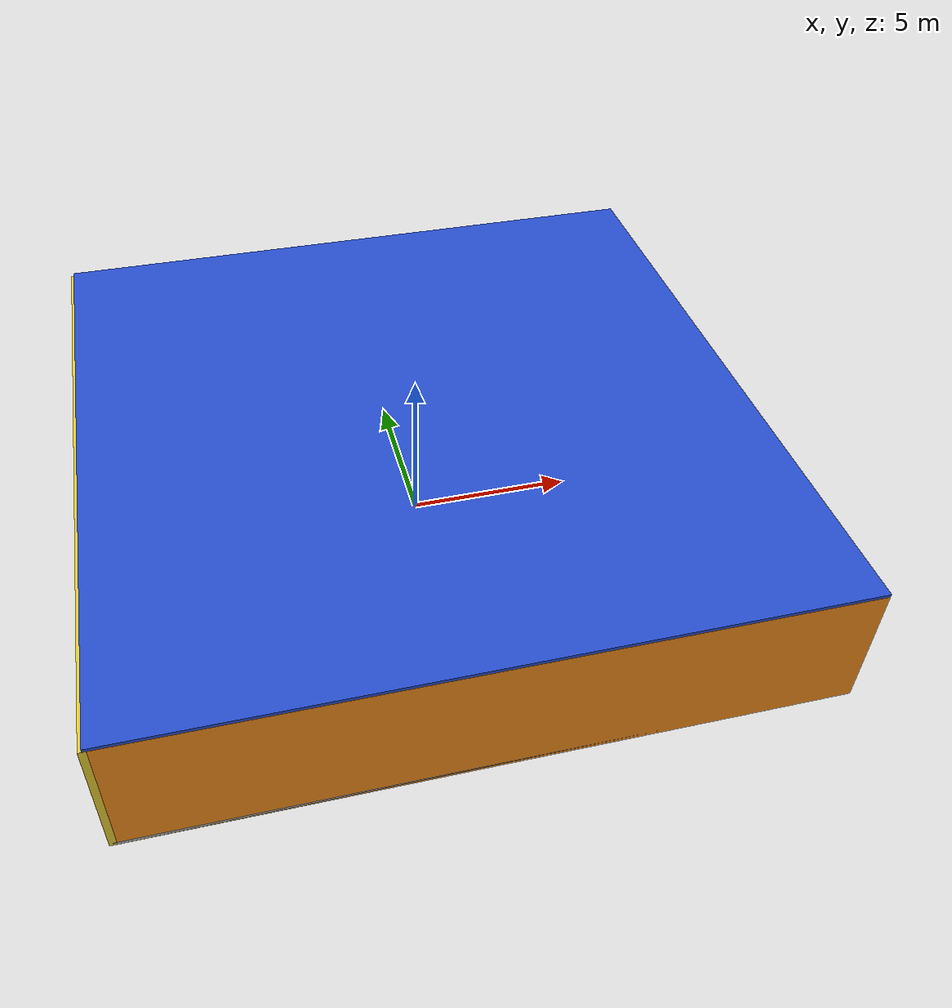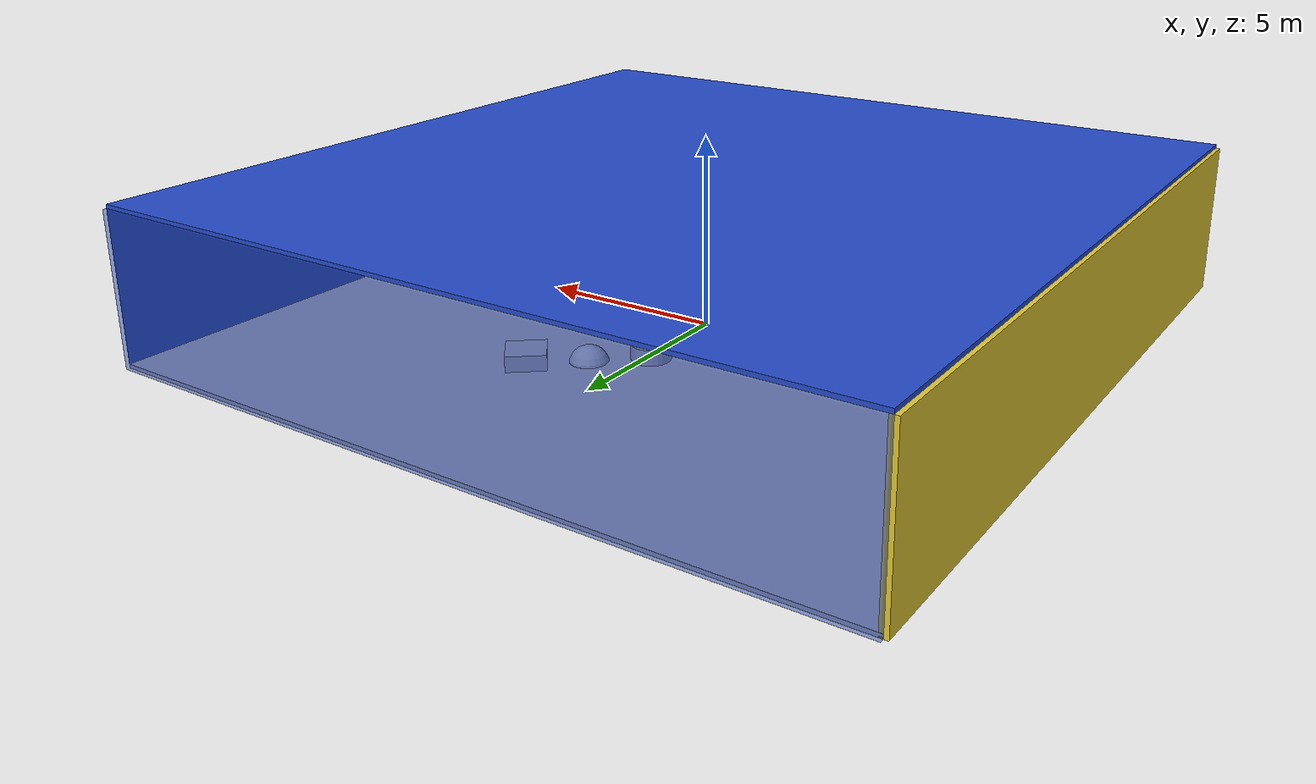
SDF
<sdf version="1.4">
 <world name="default">
  <physics type="ode">
   <max_step_size>0.001</max_step_size>
   <real_time_factor>1</real_time_factor>
   <real_time_update_rate>1000</real_time_update_rate>
   <gravity>0 0 -9.8</gravity>
  </physics>
  <scene><ambient>0.4 0.4 0.4 1</ambient><background>0.7 0.7 0.7 1</background><shadows>1</shadows></scene>
  <model name="Surrounding">
   <static>1</static>
   <link name="Ceiling">
    <collision name="Ceiling_Collision"><geometry><box><size>20 20 0.1</size></box></geometry></collision>
    <visual name="Ceiling_Visual">
     <geometry><box><size>20 20 0.1</size></box></geometry>
     <material>
      <script><uri>file://media/materials/scripts/gazebo.material</uri><name>Gazebo/Blue</name></script>
     </material>
    </visual>
    <pose>0 0 4.05 0 0 0</pose>
   </link>
   <link name="Wall_South">
    <collision name="Wall_South_Collision">
     <geometry><box><size>20 0 4</size></box></geometry>
     <pose>0 0 2 0 -0 0</pose>
    </collision>
    <visual name="Wall_South_Visual">
     <pose>0 0 2 0 -0 0</pose>
     <geometry><box><size>20 0 4</size></box></geometry>
     <material>
      <script><uri>file://media/materials/scripts/gazebo.material</uri><name>Gazebo/Orange</name></script>
     </material>
    </visual>
    <velocity_decay><linear>0</linear><angular>0</angular></velocity_decay>
    <pose>0 -10 0 0 -0 0</pose>
   </link>
   <link name="Wall_East">
    <collision name="Wall_21_Collision">
     <geometry><box><size>20 0 4</size></box></geometry>
     <pose>0 0 2 0 -0 0</pose>
    </collision>
    <visual name="Wall_21_Visual">
     <pose>0 0 2 0 -0 0</pose>
     <geometry><box><size>20 0 4</size></box></geometry>
     <material>
      <script><uri>file://media/materials/scripts/gazebo.material</uri><name>Gazebo/Blue</name></script>
     </material>
    </visual>
    <velocity_decay><linear>0</linear><angular>0</angular></velocity_decay>
    <pose>10 0 0 0 -0 1.5708</pose>
   </link>
   <link name="Wall_North">
    <collision name="Wall_22_Collision">
     <geometry><box><size>20 0.2 4</size></box></geometry>
     <pose>0 0 2 0 -0 0</pose>
    </collision>
    <visual name="Wall_22_Visual">
     <pose>0 0 2 0 -0 0</pose>
     <geometry><box><size>20 0.2 4</size></box></geometry>
     <material>
      <script><uri>file://media/materials/scripts/gazebo.material</uri><name>Gazebo/BlueTransparent</name></script>
     </material>
    </visual>
    <velocity_decay><linear>0</linear><angular>0</angular></velocity_decay>
    <pose>0 10 0 0 -0 0</pose>
   </link>
   <link name="Wall_West">
    <collision name="Wall_23_Collision">
     <geometry><box><size>20 0.2 4</size></box></geometry>
     <pose>0 0 2 0 -0 0</pose>
    </collision>
    <visual name="Wall_23_Visual">
     <pose>0 0 2 0 -0 0</pose>
     <geometry><box><size>20 0.2 4</size></box></geometry>
     <material>
      <script><uri>file://media/materials/scripts/gazebo.material</uri><name>Gazebo/ZincYellow</name></script>
     </material>
    </visual>
    <velocity_decay><linear>0</linear><angular>0</angular></velocity_decay>
    <pose>-10 0 0 0 0 -1.5708</pose>
   </link>
   <link name="Ground_link">
    <collision name="collision">
     <pose>0 0 .05 0 -0 0</pose>
     <geometry><box><size>20 20 0.1</size></box></geometry>
    </collision>
    <visual name="visual">
     <pose>0 0 .05 0 -0 0</pose>
     <geometry><box><size>20 20 0.1</size></box></geometry>
     <material>
      <script><uri>file://media/materials/scripts/gazebo.material</uri><name>Gazebo/CloudySky</name></script>
     </material>
    </visual>
   </link>
   <static>1</static>
  </model>
  <spherical_coordinates>
   <surface_model>EARTH_WGS84</surface_model>
   <latitude_deg>0</latitude_deg>
   <longitude_deg>0</longitude_deg>
   <elevation>0</elevation>
   <heading_deg>0</heading_deg>
  </spherical_coordinates>
  <light name="lightball_0" type="diffuse">
   <diffuse>0.8 0.8 0.8 1</diffuse>
   <specular>0.2 0.2 0.2 1</specular>
   <attenuation>
    <range>100</range>
    <constant>0.7</constant>
    <linear>0.01</linear>
    <quadratic>0.001</quadratic>
   </attenuation>
   <direction>-0.5 0.1 -0.9</direction>
   <pose>-5.90440176509 9.41728120215 2.47879691681 0 0 0</pose>
  </light>
  <light name="lightball_1" type="diffuse">
   <diffuse>0.8 0.8 0.8 1</diffuse>
   <specular>0.2 0.2 0.2 1</specular>
   <attenuation>
    <range>100</range>
    <constant>0.7</constant>
    <linear>0.01</linear>
    <quadratic>0.001</quadratic>
   </attenuation>
   <direction>-0.5 0.1 -0.9</direction>
   <pose>2.71531409887 -2.83179431727 3.62692037803 0 0 0</pose>
  </light>
  <light name="lightball_2" type="diffuse">
   <diffuse>0.8 0.8 0.8 1</diffuse>
   <specular>0.2 0.2 0.2 1</specular>
   <attenuation>
    <range>100</range>
    <constant>0.7</constant>
    <linear>0.01</linear>
    <quadratic>0.001</quadratic>
   </attenuation>
   <direction>-0.5 0.1 -0.9</direction>
   <pose>-7.954592796 4.6984031631 1.58765363634 0 0 0</pose>
  </light>
  <light name="lightball_3" type="diffuse">
   <diffuse>0.8 0.8 0.8 1</diffuse>
   <specular>0.2 0.2 0.2 1</specular>
   <attenuation>
    <range>100</range>
    <constant>0.7</constant>
    <linear>0.01</linear>
    <quadratic>0.001</quadratic>
   </attenuation>
   <direction>-0.5 0.1 -0.9</direction>
   <pose>5.81700056679 -0.744357159978 2.44190623521 0 0 0</pose>
  </light>
  <light name="lightball_4" type="diffuse">
   <diffuse>0.8 0.8 0.8 1</diffuse>
   <specular>0.2 0.2 0.2 1</specular>
   <attenuation>
    <range>100</range>
    <constant>0.7</constant>
    <linear>0.01</linear>
    <quadratic>0.001</quadratic>
   </attenuation>
   <direction>-0.5 0.1 -0.9</direction>
   <pose>-7.03754211813 -0.906075724889 1.04971738933 0 0 0</pose>
  </light>
  <light name="lightball_5" type="diffuse">
   <diffuse>0.8 0.8 0.8 1</diffuse>
   <specular>0.2 0.2 0.2 1</specular>
   <attenuation>
    <range>100</range>
    <constant>0.7</constant>
    <linear>0.01</linear>
    <quadratic>0.001</quadratic>
   </attenuation>
   <direction>-0.5 0.1 -0.9</direction>
   <pose>8.331921417 -6.70824122005 3.21935506478 0 0 0</pose>
  </light>
  <light name="lightball_6" type="diffuse">
   <diffuse>0.8 0.8 0.8 1</diffuse>
   <specular>0.2 0.2 0.2 1</specular>
   <attenuation>
    <range>100</range>
    <constant>0.7</constant>
    <linear>0.01</linear>
    <quadratic>0.001</quadratic>
   </attenuation>
   <direction>-0.5 0.1 -0.9</direction>
   <pose>5.3386275575 5.97435481781 1.93788996374 0 0 0</pose>
  </light>
  <light name="lightball_7" type="diffuse">
   <diffuse>0.8 0.8 0.8 1</diffuse>
   <specular>0.2 0.2 0.2 1</specular>
   <attenuation>
    <range>100</range>
    <constant>0.7</constant>
    <linear>0.01</linear>
    <quadratic>0.001</quadratic>
   </attenuation>
   <direction>-0.5 0.1 -0.9</direction>
   <pose>-8.82985490046 -8.6286248708 2.7318328113 0 0 0</pose>
  </light>
  <light name="lightball_8" type="diffuse">
   <diffuse>0.8 0.8 0.8 1</diffuse>
   <specular>0.2 0.2 0.2 1</specular>
   <attenuation>
    <range>100</range>
    <constant>0.7</constant>
    <linear>0.01</linear>
    <quadratic>0.001</quadratic>
   </attenuation>
   <direction>-0.5 0.1 -0.9</direction>
   <pose>-3.45991835934 -0.513324291661 2.77129078057 0 0 0</pose>
  </light>
  <light name="lightball_9" type="diffuse">
   <diffuse>0.8 0.8 0.8 1</diffuse>
   <specular>0.2 0.2 0.2 1</specular>
   <attenuation>
    <range>100</range>
    <constant>0.7</constant>
    <linear>0.01</linear>
    <quadratic>0.001</quadratic>
   </attenuation>
   <direction>-0.5 0.1 -0.9</direction>
   <pose>4.3519752586 4.59009792883 3.1963855676 0 0 0</pose>
  </light>
  <light name="lightball_10" type="diffuse">
   <diffuse>0.8 0.8 0.8 1</diffuse>
   <specular>0.2 0.2 0.2 1</specular>
   <attenuation>
    <range>100</range>
    <constant>0.7</constant>
    <linear>0.01</linear>
    <quadratic>0.001</quadratic>
   </attenuation>
   <direction>-0.5 0.1 -0.9</direction>
   <pose>-6.61830282183 8.23580282755 3.23153677714 0 0 0</pose>
  </light>
  <light name="lightball_11" type="diffuse">
   <diffuse>0.8 0.8 0.8 1</diffuse>
   <specular>0.2 0.2 0.2 1</specular>
   <attenuation>
    <range>100</range>
    <constant>0.7</constant>
    <linear>0.01</linear>
    <quadratic>0.001</quadratic>
   </attenuation>
   <direction>-0.5 0.1 -0.9</direction>
   <pose>-7.04799589917 -9.67884833579 0.906048966285 0 0 0</pose>
  </light>
  <include><uri>model://cabinet</uri><pose>-8.15729146087 4.74546609528 0 0 0 2.56074567549</pose></include>
  <include>
   <uri>model://construction_cone</uri>
   <pose>-2.0752314359 -4.62633862217 0 0 0 0.102998038146</pose>
  </include>
  <include>
   <uri>model://textured_shapes</uri>
   <pose>0.903579662101 3.78005131015 0 0 0 2.25866061507</pose>
  </include>
  <include><uri>model://table</uri><pose>8.02535313444 -4.48864001044 0 0 0 2.54003135672</pose></include>
 </world>
</sdf>

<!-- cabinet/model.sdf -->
<sdf version="1.5">
  <model name="cabinet">
    <static>true</static>
    <link name="cabinet_bottom_plate">
      <inertial>
        <pose>0 0 -1 0 0 0</pose>
        <inertia>
          <ixx>2.050000</ixx>
          <ixy>0</ixy>
          <ixz>0</ixz>
          <iyy>2.050000</iyy>
          <iyz>0</iyz>
          <izz>2.050000</izz>
        </inertia>
        <mass>25.000000</mass>
      </inertial>
      <collision name="cabinet_bottom_plate_geom">
        <pose>0 0 0.010000 0 0 0</pose>
        <geometry>
          <box>
            <size>0.450000 0.450000 0.020000</size>
          </box>
        </geometry>
      </collision>
      <visual name="cabinet_bottom_plate_geom_visual">
        <pose>0 0 0.010000 0 0 0</pose>
        <geometry>
          <box>
            <size>0.450000 0.450000 0.020000</size>
          </box>
        </geometry>
        <material>
          <script>
            <uri>model://media/materials/scripts/gazebo.material</uri>
            <name>Gazebo/Wood</name>
          </script>
        </material>
      </visual>
      <collision name="cabinet_bottom_plate_geom_cabinet_back_plate">
        <pose>0.235000 0 0.510000 0 0 0</pose>
        <geometry>
          <box>
            <size>0.020000 0.450000 1.020000</size>
          </box>
        </geometry>
      </collision>
      <visual name="cabinet_bottom_plate_geom_cabinet_back_plate_visual">
        <pose>0.235000 0 0.510000 0 0 0</pose>
        <geometry>
          <box>
            <size>0.020000 0.450000 1.020000</size>
          </box>
        </geometry>
        <material>
          <script>
            <uri>model://media/materials/scripts/gazebo.material</uri>
            <name>Gazebo/Wood</name>
          </script>
        </material>
      </visual>
      <collision name="cabinet_bottom_plate_geom_cabinet_left_plate">
        <pose>0 0.235000 0.510000 0 0 0</pose>
        <geometry>
          <box>
            <size>0.450000 0.020000 1.020000</size>
          </box>
        </geometry>
      </collision>
      <visual name="cabinet_bottom_plate_geom_cabinet_left_plate_visual">
        <pose>0 0.235000 0.510000 0 0 0</pose>
        <geometry>
          <box>
            <size>0.450000 0.020000 1.020000</size>
          </box>
        </geometry>
        <material>
          <script>
            <uri>model://media/materials/scripts/gazebo.material</uri>
            <name>Gazebo/Wood</name>
          </script>
        </material>
      </visual>
      <collision name="cabinet_bottom_plate_geom_cabinet_middle_plate">
        <pose>0 0 0.510000 0 0 0</pose>
        <geometry>
          <box>
            <size>0.450000 0.450000 0.020000</size>
          </box>
        </geometry>
      </collision>
      <visual name="cabinet_bottom_plate_geom_cabinet_middle_plate_visual">
        <pose>0 0 0.510000 0 0 0</pose>
        <geometry>
          <box>
            <size>0.450000 0.450000 0.020000</size>
          </box>
        </geometry>
        <material>
          <script>
            <uri>model://media/materials/scripts/gazebo.material</uri>
            <name>Gazebo/Wood</name>
          </script>
        </material>
      </visual>
      <collision name="cabinet_bottom_plate_geom_cabinet_right_plate">
        <pose>0 -0.235000 0.510000 0 0 0</pose>
        <geometry>
          <box>
            <size>0.450000 0.020000 1.020000</size>
          </box>
        </geometry>
      </collision>
      <visual name="cabinet_bottom_plate_geom_cabinet_right_plate_visual">
        <pose>0 -0.235000 0.510000 0 0 0</pose>
        <geometry>
          <box>
            <size>0.450000 0.020000 1.020000</size>
          </box>
        </geometry>
        <material>
          <script>
            <uri>model://media/materials/scripts/gazebo.material</uri>
            <name>Gazebo/Wood</name>
          </script>
        </material>
      </visual>
      <collision name="cabinet_bottom_plate_geom_cabinet_top_plate">
        <pose>0 0 1.010000 0 0 0</pose>
        <geometry>
          <box>
            <size>0.450000 0.450000 0.020000</size>
          </box>
        </geometry>
      </collision>
      <visual name="cabinet_bottom_plate_geom_cabinet_top_plate_visual">
        <pose>0 0 1.010000 0 0 0</pose>
        <geometry>
          <box>
            <size>0.450000 0.450000 0.020000</size>
          </box>
        </geometry>
        <material>
          <script>
            <uri>model://media/materials/scripts/gazebo.material</uri>
            <name>Gazebo/Wood</name>
          </script>
        </material>
      </visual>
    </link>
  </model>
</sdf>

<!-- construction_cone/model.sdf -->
<sdf version="1.5">
  <model name="Construction Cone">
    <link name="link">
      <collision name="collision">
        <geometry>
          <mesh>
            <scale>10 10 10</scale>
            <uri>file://isr-testbed/construction_cone/meshes/construction_cone.dae</uri>
          </mesh>
        </geometry>
      </collision>
      <visual name="visual">
        <geometry>
          <mesh>
            <scale>10 10 10</scale>
            <uri>file://isr-testbed/construction_cone/meshes/construction_cone.dae</uri>
          </mesh>
        </geometry>
      </visual>
    </link>
  </model>
</sdf>

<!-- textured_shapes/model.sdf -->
<sdf version="1.6">
  <model name="textured_shapes">
    <pose>0 0 0.5 0 0 0</pose>
    <link name="box">
      <pose>0 -1.5 0 0 0 0</pose>
      <collision name="collision">
        <geometry>
          <box>
            <size>1 1 1</size>
          </box>
        </geometry>
      </collision>
      <visual name="visual">
        <geometry>
          <box>
            <size>1 1 1</size>
          </box>
        </geometry>
        <material>
          <script>
            <uri>model://../model_source/models/textured_shapes/materials/scripts</uri>
            <uri>model://../model_source/models/textured_shapes/materials/textures</uri>
            <name>TexturedShape/Squares</name>
          </script>
        </material>
      </visual>
    </link>
    <link name="sphere">
      <collision name="collision">
        <geometry>
          <sphere>
            <radius>0.5</radius>
          </sphere>
        </geometry>
      </collision>
      <visual name="visual">
        <geometry>
          <sphere>
            <radius>0.5</radius>
          </sphere>
        </geometry>
        <material>
          <script>
            <uri>model://../model_source/models/textured_shapes/materials/scripts</uri>
            <uri>model://../model_source/models/textured_shapes/materials/textures</uri>
            <name>TexturedShape/Squares</name>
          </script>
        </material>
      </visual>
    </link>
    <link name="cylinder">
      <pose>0 1.5 0 0 0 0</pose>
      <collision name="collision">
        <geometry>
          <cylinder>
            <radius>0.5</radius>
            <length>1</length>
          </cylinder>
        </geometry>
      </collision>
      <visual name="visual">
        <geometry>
          <cylinder>
            <radius>0.5</radius>
            <length>1</length>
          </cylinder>
        </geometry>
        <material>
          <script>
            <uri>model://../model_source/models/textured_shapes/materials/scripts</uri>
            <uri>model://../model_source/models/textured_shapes/materials/textures</uri>
            <name>TexturedShape/Squares</name>
          </script>
        </material>
      </visual>
    </link>
  </model>
</sdf>

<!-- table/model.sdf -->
<sdf version="1.5">
  <model name="table">
    <static>true</static>
    <link name="link">
      <collision name="surface">
        <pose>0 0 1.0 0 0 0</pose>
        <geometry>
          <box>
            <size>1.5 0.8 0.03</size>
          </box>
        </geometry>
        <surface>
          <friction>
            <ode>
              <mu>0.6</mu>
              <mu2>0.6</mu2>
            </ode>
          </friction>
        </surface>
      </collision>
      <visual name="visual1">
        <pose>0 0 1.0 0 0 0</pose>
        <geometry>
          <box>
            <size>1.5 0.8 0.03</size>
          </box>
        </geometry>
        <material>
          <script>
            <uri>model://media/materials/scripts/gazebo.material</uri>
            <name>Gazebo/Wood</name>
          </script>
        </material>
      </visual>
      <collision name="front_left_leg">
        <pose>0.68 0.38 0.5 0 0 0</pose>
        <geometry>
          <cylinder>
            <radius>0.02</radius>
            <length>1.0</length>
          </cylinder>
        </geometry>
      </collision>
      <visual name="front_left_leg">
        <pose>0.68 0.38 0.5 0 0 0</pose>
        <geometry>
          <cylinder>
            <radius>0.02</radius>
            <length>1.0</length>
          </cylinder>
        </geometry>
        <material>
          <script>
            <uri>model://media/materials/scripts/gazebo.material</uri>
            <name>Gazebo/Grey</name>
          </script>
        </material>
      </visual>
      <collision name="front_right_leg">
        <pose>0.68 -0.38 0.5 0 0 0</pose>
        <geometry>
          <cylinder>
            <radius>0.02</radius>
            <length>1.0</length>
          </cylinder>
        </geometry>
      </collision>
      <visual name="front_right_leg">
        <pose>0.68 -0.38 0.5 0 0 0</pose>
        <geometry>
          <cylinder>
            <radius>0.02</radius>
            <length>1.0</length>
          </cylinder>
        </geometry>
        <material>
          <script>
            <uri>model://media/materials/scripts/gazebo.material</uri>
            <name>Gazebo/Grey</name>
          </script>
        </material>
      </visual>
      <collision name="back_right_leg">
        <pose>-0.68 -0.38 0.5 0 0 0</pose>
        <geometry>
          <cylinder>
            <radius>0.02</radius>
            <length>1.0</length>
          </cylinder>
        </geometry>
      </collision>
      <visual name="back_right_leg">
        <pose>-0.68 -0.38 0.5 0 0 0</pose>
        <geometry>
          <cylinder>
            <radius>0.02</radius>
            <length>1.0</length>
          </cylinder>
        </geometry>
        <material>
          <script>
            <uri>model://media/materials/scripts/gazebo.material</uri>
            <name>Gazebo/Grey</name>
          </script>
        </material>
      </visual>
      <collision name="back_left_leg">
        <pose>-0.68 0.38 0.5 0 0 0</pose>
        <geometry>
          <cylinder>
            <radius>0.02</radius>
            <length>1.0</length>
          </cylinder>
        </geometry>
      </collision>
      <visual name="back_left_leg">
        <pose>-0.68 0.38 0.5 0 0 0</pose>
        <geometry>
          <cylinder>
            <radius>0.02</radius>
            <length>1.0</length>
          </cylinder>
        </geometry>
        <material>
          <script>
            <uri>model://media/materials/scripts/gazebo.material</uri>
            <name>Gazebo/Grey</name>
          </script>
        </material>
      </visual>
    </link>
  </model>
</sdf>
